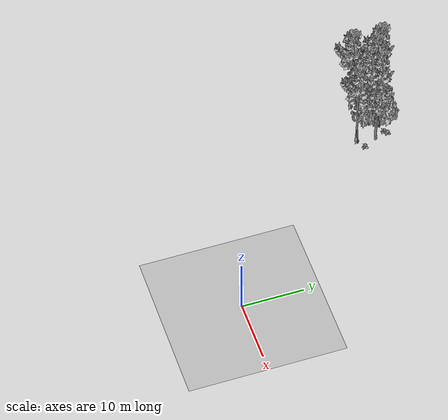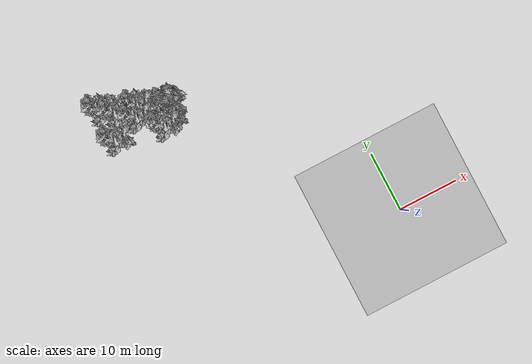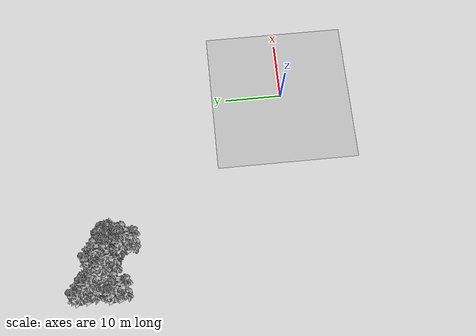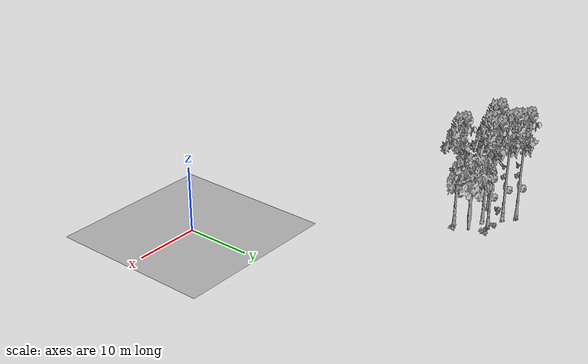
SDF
<sdf version="1.7">
 <world name="default">
  <model name="ground_plane">
   <static>1</static>
   <link name="link">
    <collision name="collision">
     <pose>-50 0 0 0 -0 0</pose>
     <geometry><plane><normal>0 0 1</normal><size>80 80</size></plane></geometry>
     <surface><contact><ode><min_depth>0.01</min_depth><max_vel>0</max_vel></ode></contact></surface>
    </collision>
    <visual name="grass">
     <cast_shadows>0</cast_shadows>
     <geometry>
      <mesh>
       <scale>0.46714285714285714 0.46714285714285714 0.1</scale>
       <uri>file://grass_plane/meshes/grass_plane.dae</uri>
      </mesh>
     </geometry>
    </visual>
   </link>
  </model>
  <model name="Tree 50">
   <static>1</static>
   <pose>-33.05041367676635 29.304511510878868 0 1.57079 -0 0</pose>
   <link name="link">
    <collision name="collision">
     <geometry><mesh><scale>3.5 5 3.5</scale><uri>model://tree_9/meshes/tree_9.obj</uri></mesh></geometry>
    </collision>
    <visual name="visual">
     <geometry><mesh><scale>3.5 5 3.5</scale><uri>model://tree_9/meshes/tree_9.obj</uri></mesh></geometry>
    </visual>
   </link>
  </model>
  <model name="Tree 207">
   <static>1</static>
   <pose>-27.96505430582893 32.23944573434105 0 1.57079 -0 0</pose>
   <link name="link">
    <collision name="collision">
     <geometry><mesh><scale>3.5 5 3.5</scale><uri>model://tree_9/meshes/tree_9.obj</uri></mesh></geometry>
    </collision>
    <visual name="visual">
     <geometry><mesh><scale>3.5 5 3.5</scale><uri>model://tree_9/meshes/tree_9.obj</uri></mesh></geometry>
    </visual>
   </link>
  </model>
  <model name="Tree 249">
   <static>1</static>
   <pose>-32.975792855148946 34.09611329683739 0 1.57079 -0 0</pose>
   <link name="link">
    <collision name="collision">
     <geometry><mesh><scale>3.5 5 3.5</scale><uri>model://tree_9/meshes/tree_9.obj</uri></mesh></geometry>
    </collision>
    <visual name="visual">
     <geometry><mesh><scale>3.5 5 3.5</scale><uri>model://tree_9/meshes/tree_9.obj</uri></mesh></geometry>
    </visual>
   </link>
  </model>
  <model name="Tree 289">
   <static>1</static>
   <pose>-25.885948759417662 27.83473600485972 0 1.57079 -0 0</pose>
   <link name="link">
    <collision name="collision">
     <geometry><mesh><scale>3.5 5 3.5</scale><uri>model://tree_9/meshes/tree_9.obj</uri></mesh></geometry>
    </collision>
    <visual name="visual">
     <geometry><mesh><scale>3.5 5 3.5</scale><uri>model://tree_9/meshes/tree_9.obj</uri></mesh></geometry>
    </visual>
   </link>
  </model>
  <model name="Tree 386">
   <static>1</static>
   <pose>-25.111133406676075 30.75318872461378 0 1.57079 -0 0</pose>
   <link name="link">
    <collision name="collision">
     <geometry><mesh><scale>3.5 5 3.5</scale><uri>model://tree_2/meshes/tree_2.obj</uri></mesh></geometry>
    </collision>
    <visual name="visual">
     <geometry><mesh><scale>3.5 5 3.5</scale><uri>model://tree_2/meshes/tree_2.obj</uri></mesh></geometry>
    </visual>
   </link>
  </model>
  <model name="Tree 421">
   <static>1</static>
   <pose>-31.336423928211275 32.74565519555095 0 1.57079 -0 0</pose>
   <link name="link">
    <collision name="collision">
     <geometry><mesh><scale>3.5 5 3.5</scale><uri>model://tree_9/meshes/tree_9.obj</uri></mesh></geometry>
    </collision>
    <visual name="visual">
     <geometry><mesh><scale>3.5 5 3.5</scale><uri>model://tree_9/meshes/tree_9.obj</uri></mesh></geometry>
    </visual>
   </link>
  </model>
  <model name="Tree 622">
   <static>1</static>
   <pose>-28.888041240727368 30.798130213785214 0 1.57079 -0 0</pose>
   <link name="link">
    <collision name="collision">
     <geometry><mesh><scale>3.5 5 3.5</scale><uri>model://tree_9/meshes/tree_9.obj</uri></mesh></geometry>
    </collision>
    <visual name="visual">
     <geometry><mesh><scale>3.5 5 3.5</scale><uri>model://tree_9/meshes/tree_9.obj</uri></mesh></geometry>
    </visual>
   </link>
  </model>
  <model name="Bush 17">
   <static>1</static>
   <pose>-24.07289445007099 28.607241001990417 0 1.57079 -0 0</pose>
   <link name="link">
    <collision name="collision">
     <geometry><mesh><scale>2 2 2</scale><uri>model://bush_2/meshes/bush_2.obj</uri></mesh></geometry>
     <surface><contact><collide_without_contact>false</collide_without_contact></contact></surface>
    </collision>
    <visual name="visual">
     <geometry><mesh><scale>2 2 2</scale><uri>model://bush_2/meshes/bush_2.obj</uri></mesh></geometry>
    </visual>
   </link>
  </model>
  <model name="Bush 84">
   <static>1</static>
   <pose>-31.45757506670999 31.725600109218533 0 1.57079 -0 0</pose>
   <link name="link">
    <collision name="collision">
     <geometry><mesh><scale>2 2 2</scale><uri>model://bush_4/meshes/bush_4.obj</uri></mesh></geometry>
     <surface><contact><collide_without_contact>false</collide_without_contact></contact></surface>
    </collision>
    <visual name="visual">
     <geometry><mesh><scale>2 2 2</scale><uri>model://bush_4/meshes/bush_4.obj</uri></mesh></geometry>
    </visual>
   </link>
  </model>
  <model name="Bush 160">
   <static>1</static>
   <pose>-25.675874359062988 32.97211946297024 0 1.57079 -0 0</pose>
   <link name="link">
    <collision name="collision">
     <geometry><mesh><scale>2 2 2</scale><uri>model://bush_2/meshes/bush_2.obj</uri></mesh></geometry>
     <surface><contact><collide_without_contact>false</collide_without_contact></contact></surface>
    </collision>
    <visual name="visual">
     <geometry><mesh><scale>2 2 2</scale><uri>model://bush_2/meshes/bush_2.obj</uri></mesh></geometry>
    </visual>
   </link>
  </model>
  <model name="Bush 194">
   <static>1</static>
   <pose>-28.327703749838157 32.88217938470693 0 1.57079 -0 0</pose>
   <link name="link">
    <collision name="collision">
     <geometry><mesh><scale>2 2 2</scale><uri>model://bush_2/meshes/bush_2.obj</uri></mesh></geometry>
     <surface><contact><collide_without_contact>false</collide_without_contact></contact></surface>
    </collision>
    <visual name="visual">
     <geometry><mesh><scale>2 2 2</scale><uri>model://bush_2/meshes/bush_2.obj</uri></mesh></geometry>
    </visual>
   </link>
  </model>
  <model name="Bush 299">
   <static>1</static>
   <pose>-26.125590248154626 32.50614237044624 0 1.57079 -0 0</pose>
   <link name="link">
    <collision name="collision">
     <geometry><mesh><scale>2 2 2</scale><uri>model://bush_2/meshes/bush_2.obj</uri></mesh></geometry>
     <surface><contact><collide_without_contact>false</collide_without_contact></contact></surface>
    </collision>
    <visual name="visual">
     <geometry><mesh><scale>2 2 2</scale><uri>model://bush_2/meshes/bush_2.obj</uri></mesh></geometry>
    </visual>
   </link>
  </model>
 </world>
</sdf>
